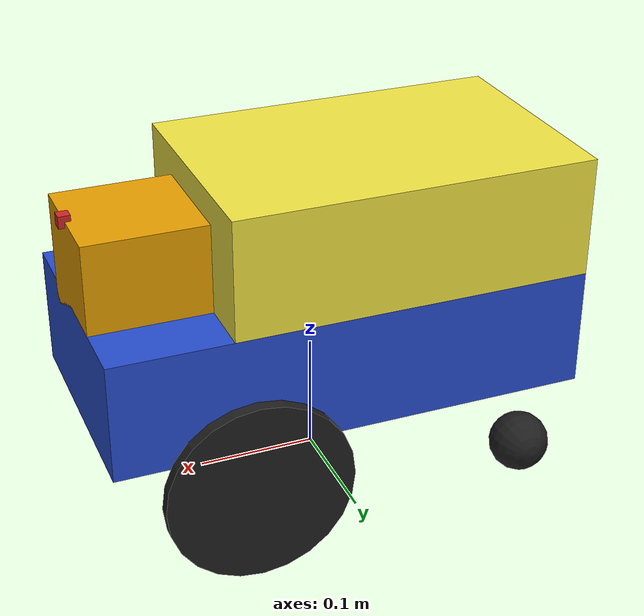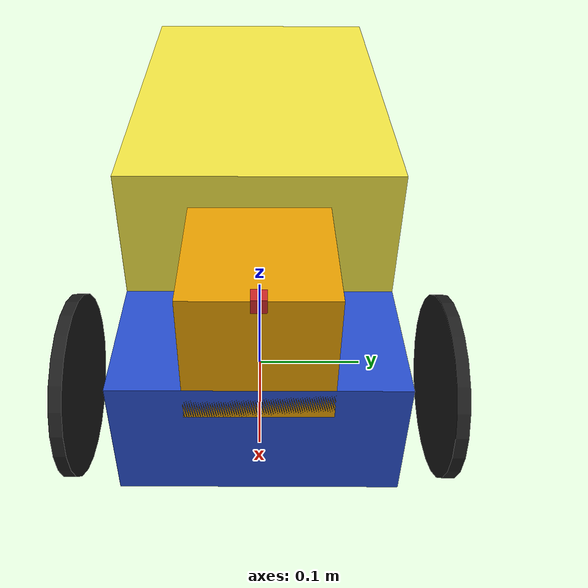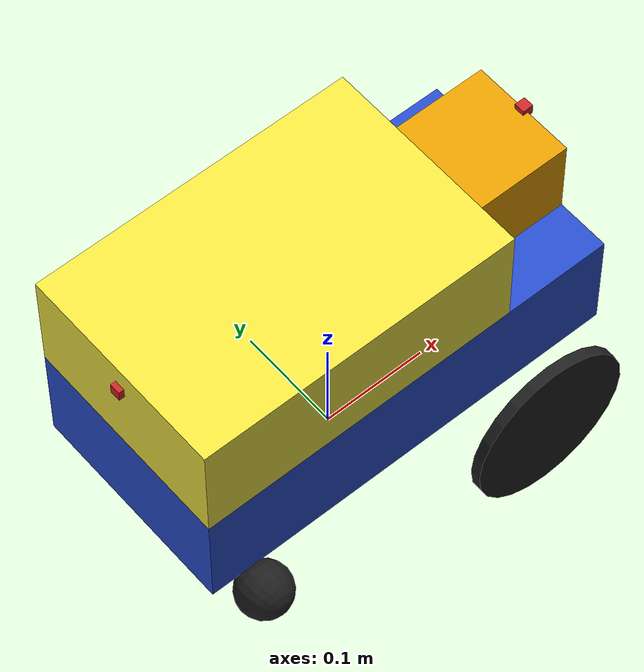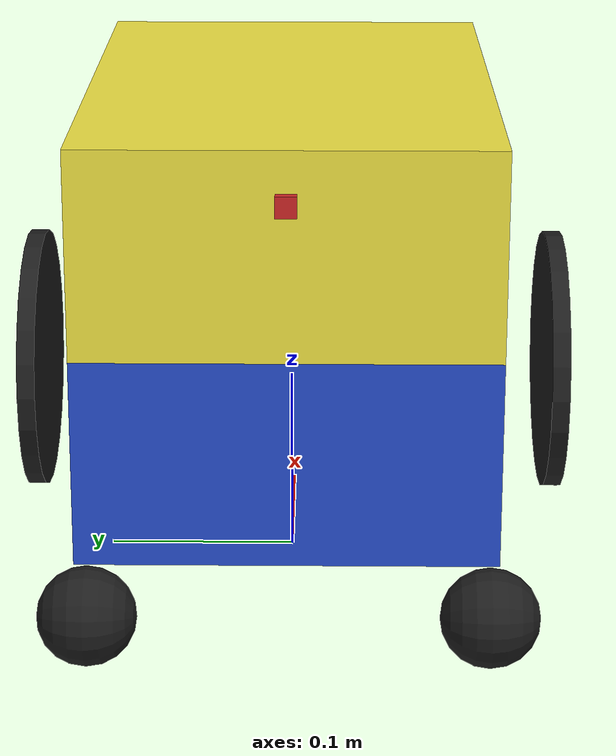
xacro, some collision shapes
<?xml version="1.0"?>
<robot xmlns:xacro="http://www.ros.org/wiki/xacro" name="ABot">

  <link name="base_link">
  <inertial>
    <origin xyz="0 0 0.125" />
    <mass value="15" />
    <inertia  ixx="1.1" ixy="0.0"  ixz="0.0"  iyy="1.1"  iyz="0.0"  izz="1.1" />
  </inertial>
  <visual>
    <origin xyz="0 0 0.125"/>
    <geometry>
      <box size="0.4 0.2 0.1" />
    </geometry>
  </visual>
  <collision>
    <origin xyz="0 0 0.125"/>
    <geometry>
      <box size="0.4 0.2 0.1" />
    </geometry>
  </collision>
  </link>

  <link name="camera_link1">
    <collision>
      <origin xyz="0 0 0" rpy="0 0 0"/>
      <geometry>
    <box size="0.01 0.01 0.01"/>
      </geometry>
    </collision>

    <visual>
      <origin xyz="0 0 0" rpy="0 0 0"/>
      <geometry>
    <box size="0.01 0.01 0.01"/>
      </geometry>
      <material name="red"/>
    </visual>

    <inertial>
      <mass value="1e-5" />
      <origin xyz="0 0 0" rpy="0 0 0"/>
      <inertia ixx="1e-6" ixy="0" ixz="0" iyy="1e-6" iyz="0" izz="1e-6" />
    </inertial>
  </link>

  <link name="camera_link2">
    <collision>
      <origin xyz="0 0 0" rpy="0 0 0"/>
      <geometry>
    <box size="0.01 0.01 0.01"/>
      </geometry>
    </collision>

    <visual>
      <origin xyz="0 0 0" rpy="0 0 0"/>
      <geometry>
    <box size="0.01 0.01 0.01"/>
      </geometry>
      <material name="red"/>
    </visual>

    <inertial>
      <mass value="1e-5" />
      <origin xyz="0 0 0" rpy="0 0 0"/>
      <inertia ixx="1e-6" ixy="0" ixz="0" iyy="1e-6" iyz="0" izz="1e-6" />
    </inertial>
  </link>

  <joint name="camera_joint1" type="fixed">
    <axis xyz="0 1 0" />
    <origin xyz="0.2 0 0.25" rpy="0 0 0"/>
    <parent link="base_link"/>
    <child link="camera_link1"/>
  </joint>

  <joint name="camera_joint2" type="fixed">
    <axis xyz="0 1 0" />
    <origin xyz="-0.2 0 0.25" rpy="0 0 3.1415"/>
    <parent link="base_link"/>
    <child link="camera_link2"/>
  </joint>

  <link name="box">
  <inertial>
    <origin xyz="0 0 0" />
    <mass value="5" />
    <inertia  ixx="0.1" ixy="0.0"  ixz="0.0"  iyy="0.1"  iyz="0.0"  izz="0.1" />
  </inertial>
  <visual>
    <origin xyz="0 0 0"/>
    <geometry>
      <box size="0.3 0.2 0.1" />
    </geometry>
  </visual>
  <collision>
    <origin xyz="0 0 0"/>
    <geometry>
      <box size="0.3 0.2 0.1" />
    </geometry>
  </collision>
  </link>

  <joint name="base_link_box" type="fixed">
    <parent link="base_link"/>
    <child link="box"/>
    <axis xyz="0 0 0"/>
    <origin xyz="-0.05 0 0.225"/>
  </joint>

  <gazebo reference="base_link">
    <material>Gazebo/Blue</material>
  </gazebo>

  <link name="right_wheel">
  <inertial>
    <origin rpy="1.5707963267948966 0 0" xyz="0 0 0" />
    <mass value="0.1" />
    <inertia  ixx="0.01" ixy="0.0"  ixz="0.0"  iyy="0.01"  iyz="0.0"  izz="0.01" />
  </inertial>
  <visual>
    <origin rpy="1.5707963267948966 0 0" xyz="0 0 0"/>
    <geometry>
      <cylinder length="0.01" radius="0.075"/>
    </geometry>
  </visual>
  <collision>
    <origin rpy="1.5707963267948966 0 0" xyz="0 0 0"/>
    <geometry>
      <cylinder length="0.01" radius="0.075"/>
    </geometry>
  </collision>
  </link>

  <joint name="base_link_right_wheel" type="continuous">
    <parent link="base_link"/>
    <child link="right_wheel"/>
    <axis xyz="0 1 0"/>
    <origin xyz="0.1 -0.15 0.075"/>
  </joint>

  <transmission name="T_base_link_right_wheel">
    <type>transmission_interface/SimpleTransmission</type>
    <actuator name="motor_1">
      <mechanicalReduction>1</mechanicalReduction>
      <hardwareInterface>hardware_interface/VelocityJointInterface</hardwareInterface>
    </actuator>
    <joint name="base_link_right_wheel">
      <hardwareInterface>hardware_interface/VelocityJointInterface</hardwareInterface>
    </joint>
  </transmission>

  <link name="left_wheel">
  <inertial>
    <origin rpy="1.5707963267948966 0 0" xyz="0 0 0" />
    <mass value="0.1" />
    <inertia  ixx="0.01" ixy="0.0"  ixz="0.0"  iyy="0.01"  iyz="0.0"  izz="0.01" />
  </inertial>
  <visual>
    <origin rpy="1.5707963267948966 0 0" xyz="0 0 0"/>
    <geometry>
      <cylinder length="0.01" radius="0.075"/>
    </geometry>
  </visual>
  <collision>
    <origin rpy="1.5707963267948966 0 0" xyz="0 0 0"/>
    <geometry>
      <cylinder length="0.01" radius="0.075"/>
    </geometry>
  </collision>
  </link>

  <joint name="base_link_left_wheel" type="continuous">
    <parent link="base_link"/>
    <child link="left_wheel"/>
    <axis xyz="0 1 0"/>
    <origin xyz="0.1 0.15 0.075"/>
  </joint>

  <transmission name="T_base_link_left_wheel">
    <type>transmission_interface/SimpleTransmission</type>
    <actuator name="motor_2">
      <mechanicalReduction>1</mechanicalReduction>
      <hardwareInterface>hardware_interface/VelocityJointInterface</hardwareInterface>
    </actuator>
    <joint name="base_link_left_wheel">
      <hardwareInterface>hardware_interface/VelocityJointInterface</hardwareInterface>
    </joint>
  </transmission>

  <link name="back_wheel1">
  <inertial>
    <origin rpy="1.5707963267948966 0 0" xyz="0 0 0" />
    <mass value="0.1" />
    <inertia  ixx="0.01" ixy="0.0"  ixz="0.0"  iyy="0.01"  iyz="0.0"  izz="0.01" />
  </inertial>
  <visual>
    <origin rpy="1.5707963267948966 0 0" xyz="0 0 0"/>
    <geometry>
      <sphere length="0.1" radius="0.025"/>
    </geometry>
  </visual>
  <collision>
    <origin rpy="1.5707963267948966 0 0" xyz="0 0 0"/>
    <geometry>
      <sphere length="0.1" radius="0.025"/>
    </geometry>
  </collision>
      <surface>
        <friction>
          <ode>
            <mu>0.0</mu>
            <mu2>0.0</mu2>
          </ode>
        </friction>
      </surface>
  </link>

  <link name="back_wheel2">
  <inertial>
    <origin rpy="1.5707963267948966 0 0" xyz="0 0 0" />
    <mass value="0.1" />
    <inertia  ixx="0.01" ixy="0.0"  ixz="0.0"  iyy="0.01"  iyz="0.0"  izz="0.01" />
  </inertial>
  <visual>
    <origin rpy="1.5707963267948966 0 0" xyz="0 0 0"/>
    <geometry>
      <sphere length="0.1" radius="0.025"/>
    </geometry>
  </visual>
  <collision>
    <origin rpy="1.5707963267948966 0 0" xyz="0 0 0"/>
    <geometry>
      <sphere length="0.1" radius="0.025"/>
    </geometry>
  </collision>
      <surface>
        <friction>
          <ode>
            <mu>0.0</mu>
            <mu2>0.0</mu2>
          </ode>
        </friction>
      </surface>
  </link>

  <gazebo reference="back_wheel1">
    <material>Gazebo/White</material>
  </gazebo>

  <gazebo reference="back_wheel2">
    <material>Gazebo/White</material>
  </gazebo>

  <joint name="base_link_back_wheel1" type="continuous">
    <parent link="base_link"/>
    <child link="back_wheel1"/>
    <axis xyz="0 1 1"/>
    <origin xyz="-0.15 0.1 0.025"/>
  </joint>

  <joint name="base_link_back_wheel2" type="continuous">
    <parent link="base_link"/>
    <child link="back_wheel2"/>
    <axis xyz="0 1 1"/>
    <origin xyz="-0.15 -0.1 0.025"/>
  </joint>

   <joint name="hokuyo_joint" type="fixed">
    <axis xyz="0 1 0" />
    <origin xyz="0.15 0 0.2" rpy="0 0 0"/>
    <parent link="base_link"/>
    <child link="hokuyo_link"/>
  </joint>

  <!-- Hokuyo Laser -->
  <link name="hokuyo_link">
    <collision>
      <origin xyz="0 0 0" rpy="0 0 0"/>
      <geometry>
    <box size="0.1 0.1 0.1"/>
      </geometry>
    </collision>

    <visual>
      <origin xyz="0 0 0" rpy="0 0 0"/>
      <geometry>
        <mesh filename="package://dql_robot/urdf/hokuyo.dae"/>
      </geometry>
    </visual>

    <inertial>
      <mass value="1e-5" />
      <origin xyz="0 0 0" rpy="0 0 0"/>
      <inertia ixx="1e-6" ixy="0" ixz="0" iyy="1e-6" iyz="0" izz="1e-6" />
    </inertial>
  </link>

 <gazebo reference="back_wheel1">
    <mu1>0.0</mu1>
    <mu2>0.0</mu2>
    <material>Gazebo/Black</material>
  </gazebo>

  <gazebo reference="back_wheel2">
    <mu1>0.0</mu1>
    <mu2>0.0</mu2>
    <material>Gazebo/Black</material>
  </gazebo>

<gazebo reference="left_wheel">
    <mu1>1.0</mu1>
    <mu2>0.5</mu2>
    <material>Gazebo/Black</material>
  </gazebo>

  <gazebo reference="right_wheel">
    <mu1>1.0</mu1>
    <mu2>0.5</mu2>
    <material>Gazebo/Black</material>
  </gazebo>

<gazebo>
  <plugin name="differential_drive_controller" filename="libgazebo_ros_diff_drive.so">
    <alwaysOn>true</alwaysOn>
    <updateRate>5</updateRate>
    <leftJoint>base_link_left_wheel</leftJoint>
    <rightJoint>base_link_right_wheel</rightJoint>
    <wheelSeparation>0.35</wheelSeparation>
    <wheelDiameter>0.15</wheelDiameter>
    <torque>10</torque>
    <commandTopic>cmd_vel</commandTopic>
    <odometryTopic>odom</odometryTopic>
    <odometryFrame>odom</odometryFrame>
    <robotBaseFrame>base_link</robotBaseFrame>
    <publishWheelJointState>true</publishWheelJointState>
    <enable_odom_tf>true</enable_odom_tf>
  </plugin>
</gazebo>

<!-- front camera -->
  <gazebo reference="camera_link1">
    <sensor type="camera" name="camera1">
      <update_rate>30.0</update_rate>
      <camera name="head">
        <horizontal_fov>1.3962634</horizontal_fov>
        <image>
          <width>640</width>
          <height>480</height>
          <format>R8G8B8</format>
        </image>
        <clip>
          <near>0.02</near>
          <far>300</far>
        </clip>
        <noise>
          <type>gaussian</type>
          <!-- Noise is sampled independently per pixel on each frame.
               That pixel's noise value is added to each of its color
               channels, which at that point lie in the range [0,1]. -->
          <mean>0.0</mean>
          <stddev>0.007</stddev>
        </noise>
      </camera>
      <plugin name="camera_controller" filename="libgazebo_ros_camera.so">
        <alwaysOn>true</alwaysOn>
        <updateRate>0.0</updateRate>
        <cameraName>/front_camera</cameraName>
        <imageTopicName>image_raw</imageTopicName>
        <cameraInfoTopicName>camera_info</cameraInfoTopicName>
        <frameName>camera_link1</frameName>
        <hackBaseline>0.07</hackBaseline>
        <distortionK1>0.0</distortionK1>
        <distortionK2>0.0</distortionK2>
        <distortionK3>0.0</distortionK3>
        <distortionT1>0.0</distortionT1>
        <distortionT2>0.0</distortionT2>
      </plugin>
    </sensor>
  </gazebo>

	<!-- back camera -->
  <gazebo reference="camera_link2">
    <sensor type="camera" name="camera2">
      <update_rate>30.0</update_rate>
      <camera name="head">
        <horizontal_fov>2.4</horizontal_fov>
        <image>
          <width>640</width>
          <height>480</height>
          <format>R8G8B8</format>
        </image>
        <clip>
          <near>0.02</near>
          <far>300</far>
        </clip>
        <noise>
          <type>gaussian</type>
          <!-- Noise is sampled independently per pixel on each frame.
               That pixel's noise value is added to each of its color
               channels, which at that point lie in the range [0,1]. -->
          <mean>0.0</mean>
          <stddev>0.007</stddev>
        </noise>
      </camera>
      <plugin name="camera_controller" filename="libgazebo_ros_camera.so">
        <alwaysOn>true</alwaysOn>
        <updateRate>0.0</updateRate>
        <cameraName>/back_camera</cameraName>
        <imageTopicName>image_raw</imageTopicName>
        <cameraInfoTopicName>camera_info</cameraInfoTopicName>
        <frameName>camera_link2</frameName>
        <hackBaseline>0.07</hackBaseline>
        <distortionK1>0.0</distortionK1>
        <distortionK2>0.0</distortionK2>
        <distortionK3>0.0</distortionK3>
        <distortionT1>0.0</distortionT1>
        <distortionT2>0.0</distortionT2>
      </plugin>
    </sensor>
  </gazebo>

    <gazebo reference="hokuyo_link">
    <sensor type="gpu_ray" name="head_hokuyo_sensor">
      <pose>0 0 0 0 0 0</pose>
      <visualize>false</visualize>
      <update_rate>30</update_rate>
      <ray>
        <scan>
          <horizontal>
            <samples>720</samples>
            <resolution>1</resolution>
            <min_angle>-1.570796</min_angle>
            <max_angle>1.570796</max_angle>
          </horizontal>
        </scan>
        <range>
          <min>0.10</min>
          <max>10.0</max>
          <resolution>0.01</resolution>
        </range>
        <noise>
          <type>gaussian</type>
          <mean>0.0</mean>
          <stddev>0.01</stddev>
        </noise>
      </ray>
      <plugin name="gazebo_ros_head_hokuyo_controller" filename="libgazebo_ros_gpu_laser.so">
        <topicName>scan</topicName>
        <frameName>hokuyo_link</frameName>
      </plugin>
    </sensor>
  </gazebo>

  <xacro:property name="hokuyo_link" value="0.05" />

  <xacro:property name="camera_link1" value="0.05" /> <!-- Size of square 'camera' box -->
  <xacro:property name="camera_link2" value="0.05" /> <!-- Size of square 'camera' box -->
</robot>
